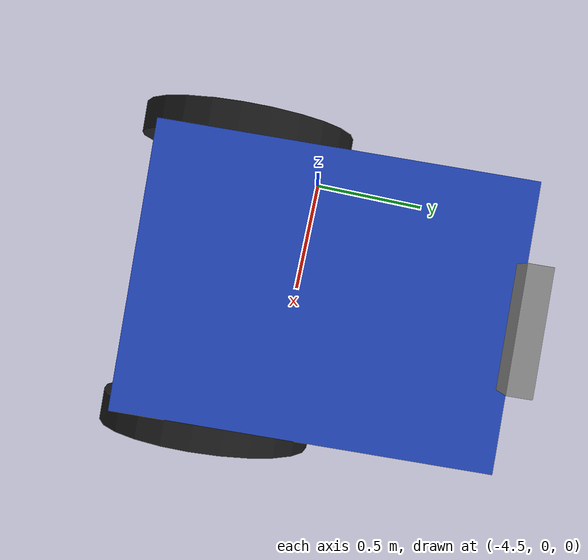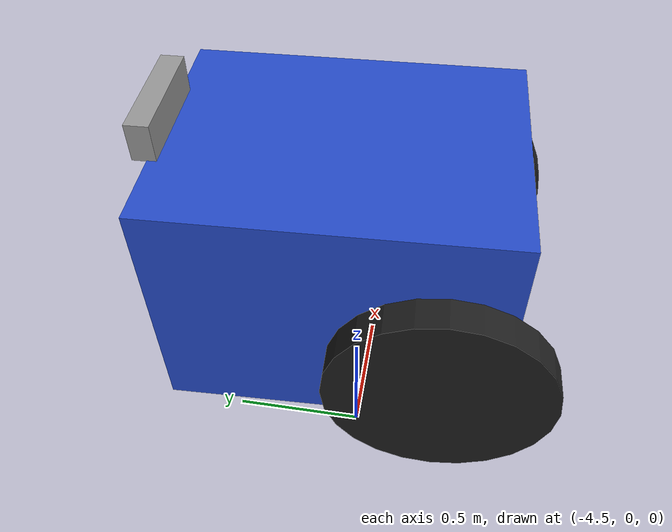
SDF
<sdf version="1.6">
 <world name="default">
  <scene>
   <grid>0</grid>
   <ambient>0.4 0.4 0.4 1</ambient>
   <background>0.7 0.7 0.7 1</background>
   <shadows>1</shadows>
  </scene>
  <light name="sun" type="directional">
   <pose>0 0 10 0 -0 0</pose>
   <diffuse>0.8 0.8 0.8 1</diffuse>
   <specular>0.1 0.1 0.1 1</specular>
   <attenuation>
    <range>1000</range>
    <constant>0.9</constant>
    <linear>0.01</linear>
    <quadratic>0.001</quadratic>
   </attenuation>
   <direction>-0.5 0.5 -1</direction>
  </light>
  <model name="ground">
   <link name="body">
    <collision name="geom">
     <geometry><plane><normal>0 0 1</normal><size>1 1</size></plane></geometry>
     <surface><friction><ode><mu>100</mu><mu2>50</mu2></ode></friction></surface>
    </collision>
   </link>
   <static>1</static>
  </model>
  <gravity>0 0 -9.8</gravity>
  <magnetic_field>6e-06 2.3e-05 -4.2e-05</magnetic_field>
  <atmosphere type="adiabatic"/>
  <physics name="default_physics" default="0" type="ode">
   <max_step_size>0.001</max_step_size>
   <real_time_factor>1</real_time_factor>
   <real_time_update_rate>1000</real_time_update_rate>
  </physics>
  <spherical_coordinates>
   <surface_model>EARTH_WGS84</surface_model>
   <latitude_deg>0</latitude_deg>
   <longitude_deg>0</longitude_deg>
   <elevation>0</elevation>
   <heading_deg>0</heading_deg>
  </spherical_coordinates>
  <model name="vehicle_model">
   <link name="link_1">
    <pose>0 0.11625 0.1275 0 -0 0</pose>
    <inertial>
     <mass>0.05</mass>
     <inertia><ixx>1</ixx><ixy>0</ixy><ixz>0</ixz><iyy>1</iyy><iyz>0</iyz><izz>1</izz></inertia>
    </inertial>
    <visual name="visual">
     <geometry><box><size>1.03 1.35 1</size></box></geometry>
     <material>
      <lighting>1</lighting>
      <script><uri>file://media/materials/scripts/gazebo.material</uri><name>Gazebo/Blue</name></script>
      <ambient>0.3 0.3 0.3 1</ambient>
      <diffuse>0.7 0.7 0.7 1</diffuse>
      <specular>0.01 0.01 0.01 1</specular>
      <emissive>0 0 0 1</emissive>
      <shader type="vertex"><normal_map>__default__</normal_map></shader>
     </material>
    </visual>
    <visual name="ModelPreview_0::link_1::visual_1">
     <geometry><box><size>1.03 1.35 1</size></box></geometry>
     <material>
      <lighting>1</lighting>
      <script><uri>file://media/materials/scripts/gazebo.material</uri><name>Gazebo/Grey</name></script>
      <ambient>0.3 0.3 0.3 1</ambient>
      <diffuse>0.7 0.7 0.7 1</diffuse>
      <specular>0.01 0.01 0.01 1</specular>
      <emissive>0 0 0 1</emissive>
      <shader type="vertex"><normal_map>__default__</normal_map></shader>
     </material>
    </visual>
    <collision name="collision">
     <geometry><box><size>1.03 1.35 1</size></box></geometry>
     <surface>
      <friction>
       <ode><mu>1</mu><mu2>1</mu2><fdir1>0 0 0</fdir1><slip1>0</slip1><slip2>0</slip2></ode>
       <torsional>
        <coefficient>1</coefficient>
        <patch_radius>0</patch_radius>
        <surface_radius>0</surface_radius>
        <use_patch_radius>1</use_patch_radius>
        <ode><slip>0</slip></ode>
       </torsional>
      </friction>
      <bounce><restitution_coefficient>0</restitution_coefficient><threshold>1e+06</threshold></bounce>
      <contact>
       <collide_without_contact>0</collide_without_contact>
       <collide_without_contact_bitmask>1</collide_without_contact_bitmask>
       <collide_bitmask>1</collide_bitmask>
       <ode>
        <soft_cfm>0</soft_cfm>
        <soft_erp>0.2</soft_erp>
        <kp>1e+13</kp>
        <kd>1</kd>
        <max_vel>0.01</max_vel>
        <min_depth>0</min_depth>
       </ode>
       <bullet>
        <split_impulse>1</split_impulse>
        <split_impulse_penetration_threshold>-0.01</split_impulse_penetration_threshold>
        <soft_cfm>0</soft_cfm>
        <soft_erp>0.2</soft_erp>
        <kp>1e+13</kp>
        <kd>1</kd>
       </bullet>
      </contact>
     </surface>
    </collision>
   </link>
   <link name="link_0">
    <pose>0.6 -0.28375 -0.0425 0 -0 0</pose>
    <inertial>
     <mass>5</mass>
     <pose>0 0 0 0 1.57079 0</pose>
     <inertia><ixx>1</ixx><ixy>0</ixy><ixz>0</ixz><iyy>1</iyy><iyz>0</iyz><izz>1</izz></inertia>
    </inertial>
    <visual name="visual">
     <pose>0 0 0 0 1.57079 0</pose>
     <geometry><cylinder><radius>0.44</radius><length>0.127562</length></cylinder></geometry>
     <material>
      <lighting>1</lighting>
      <script><uri>file://media/materials/scripts/gazebo.material</uri><name>Gazebo/Black</name></script>
      <ambient>0.3 0.3 0.3 1</ambient>
      <diffuse>0.7 0.7 0.7 1</diffuse>
      <specular>0.01 0.01 0.01 1</specular>
      <emissive>0 0 0 1</emissive>
      <shader type="vertex"><normal_map>__default__</normal_map></shader>
     </material>
    </visual>
    <collision name="collision">
     <pose>0 0 0 0 1.57079 0</pose>
     <geometry><cylinder><radius>0.44</radius><length>0.127562</length></cylinder></geometry>
     <surface>
      <friction>
       <ode><mu>1</mu><mu2>1</mu2><fdir1>0 0 0</fdir1><slip1>0</slip1><slip2>0</slip2></ode>
       <torsional>
        <coefficient>1</coefficient>
        <patch_radius>0</patch_radius>
        <surface_radius>0</surface_radius>
        <use_patch_radius>1</use_patch_radius>
        <ode><slip>0</slip></ode>
       </torsional>
      </friction>
      <bounce><restitution_coefficient>0</restitution_coefficient><threshold>1e+06</threshold></bounce>
      <contact>
       <collide_without_contact>0</collide_without_contact>
       <collide_without_contact_bitmask>1</collide_without_contact_bitmask>
       <collide_bitmask>1</collide_bitmask>
       <ode>
        <soft_cfm>0</soft_cfm>
        <soft_erp>0.2</soft_erp>
        <kp>1e+13</kp>
        <kd>1</kd>
        <max_vel>0.01</max_vel>
        <min_depth>0</min_depth>
       </ode>
       <bullet>
        <split_impulse>1</split_impulse>
        <split_impulse_penetration_threshold>-0.01</split_impulse_penetration_threshold>
        <soft_cfm>0</soft_cfm>
        <soft_erp>0.2</soft_erp>
        <kp>1e+13</kp>
        <kd>1</kd>
       </bullet>
      </contact>
     </surface>
    </collision>
   </link>
   <link name="link_0_clone">
    <pose>-0.6 -0.30375 -0.0425 0 -0 0</pose>
    <inertial>
     <mass>5</mass>
     <pose>0 0 0 0 1.57079 0</pose>
     <inertia><ixx>1</ixx><ixy>0</ixy><ixz>0</ixz><iyy>1</iyy><iyz>0</iyz><izz>1</izz></inertia>
    </inertial>
    <visual name="visual">
     <pose>0 0 0 0 1.57079 0</pose>
     <geometry><cylinder><radius>0.44</radius><length>0.127562</length></cylinder></geometry>
     <material>
      <lighting>1</lighting>
      <script><uri>file://media/materials/scripts/gazebo.material</uri><name>Gazebo/Black</name></script>
      <ambient>0.3 0.3 0.3 1</ambient>
      <diffuse>0.7 0.7 0.7 1</diffuse>
      <specular>0.01 0.01 0.01 1</specular>
      <emissive>0 0 0 1</emissive>
      <shader type="vertex"><normal_map>__default__</normal_map></shader>
     </material>
    </visual>
    <collision name="collision">
     <pose>0 0 0 0 1.57079 0</pose>
     <geometry><cylinder><radius>0.44</radius><length>0.127562</length></cylinder></geometry>
     <surface>
      <friction>
       <ode><mu>1</mu><mu2>1</mu2><fdir1>0 0 0</fdir1><slip1>0</slip1><slip2>0</slip2></ode>
       <torsional>
        <coefficient>1</coefficient>
        <patch_radius>0</patch_radius>
        <surface_radius>0</surface_radius>
        <use_patch_radius>1</use_patch_radius>
        <ode><slip>0</slip></ode>
       </torsional>
      </friction>
      <bounce><restitution_coefficient>0</restitution_coefficient><threshold>1e+06</threshold></bounce>
      <contact>
       <collide_without_contact>0</collide_without_contact>
       <collide_without_contact_bitmask>1</collide_without_contact_bitmask>
       <collide_bitmask>1</collide_bitmask>
       <ode>
        <soft_cfm>0</soft_cfm>
        <soft_erp>0.2</soft_erp>
        <kp>1e+13</kp>
        <kd>1</kd>
        <max_vel>0.01</max_vel>
        <min_depth>0</min_depth>
       </ode>
       <bullet>
        <split_impulse>1</split_impulse>
        <split_impulse_penetration_threshold>-0.01</split_impulse_penetration_threshold>
        <soft_cfm>0</soft_cfm>
        <soft_erp>0.2</soft_erp>
        <kp>1e+13</kp>
        <kd>1</kd>
       </bullet>
      </contact>
     </surface>
    </collision>
   </link>
   <link name="link_2">
    <pose>-0 0.47125 -0.0425 0 -0 0</pose>
    <inertial>
     <mass>5</mass>
     <inertia><ixx>1</ixx><ixy>0</ixy><ixz>0</ixz><iyy>1</iyy><iyz>0</iyz><izz>1</izz></inertia>
    </inertial>
    <visual name="visual">
     <geometry><sphere><radius>0.44</radius></sphere></geometry>
     <material>
      <lighting>1</lighting>
      <script><uri>file://media/materials/scripts/gazebo.material</uri><name>Gazebo/Blue</name></script>
      <ambient>0.3 0.3 0.3 1</ambient>
      <diffuse>0.7 0.7 0.7 1</diffuse>
      <specular>0.01 0.01 0.01 1</specular>
      <emissive>0 0 0 1</emissive>
      <shader type="vertex"><normal_map>__default__</normal_map></shader>
     </material>
    </visual>
    <collision name="collision">
     <geometry><sphere><radius>0.44</radius></sphere></geometry>
     <surface>
      <friction>
       <ode><mu>0.05</mu><mu2>0.05</mu2><fdir1>0 0 0</fdir1><slip1>1</slip1><slip2>1</slip2></ode>
       <torsional>
        <coefficient>1</coefficient>
        <patch_radius>0</patch_radius>
        <surface_radius>0</surface_radius>
        <use_patch_radius>1</use_patch_radius>
        <ode><slip>0</slip></ode>
       </torsional>
      </friction>
      <bounce><restitution_coefficient>0</restitution_coefficient><threshold>1e+06</threshold></bounce>
      <contact>
       <collide_without_contact>0</collide_without_contact>
       <collide_without_contact_bitmask>1</collide_without_contact_bitmask>
       <collide_bitmask>1</collide_bitmask>
       <ode>
        <soft_cfm>0</soft_cfm>
        <soft_erp>0.2</soft_erp>
        <kp>1e+13</kp>
        <kd>1</kd>
        <max_vel>0.01</max_vel>
        <min_depth>0</min_depth>
       </ode>
       <bullet>
        <split_impulse>1</split_impulse>
        <split_impulse_penetration_threshold>-0.01</split_impulse_penetration_threshold>
        <soft_cfm>0</soft_cfm>
        <soft_erp>0.2</soft_erp>
        <kp>1e+13</kp>
        <kd>1</kd>
       </bullet>
      </contact>
     </surface>
    </collision>
   </link>
   <model name="vehicle_camera">
    <pose>0 0.8 0.7 0 -0 1.5708</pose>
    <link name="link_0">
     <inertial>
      <mass>0.00603968</mass>
      <inertia>
       <ixx>1.55691e-05</ixx>
       <ixy>0</ixy>
       <ixz>0</ixz>
       <iyy>0.000110152</iyy>
       <iyz>0</iyz>
       <izz>0.00010281</izz>
      </inertia>
     </inertial>
     <visual name="visual">
      <geometry><box><size>0.090403 0.442828 0.150878</size></box></geometry>
      <material>
       <lighting>1</lighting>
       <script><uri>file://media/materials/scripts/gazebo.material</uri><name>Gazebo/Grey</name></script>
       <ambient>0.3 0.3 0.3 1</ambient>
       <diffuse>0.7 0.7 0.7 1</diffuse>
       <specular>0.01 0.01 0.01 1</specular>
       <emissive>0 0 0 1</emissive>
      </material>
     </visual>
     <collision name="collision">
      <geometry><box><size>0.090403 0.442828 0.150878</size></box></geometry>
      <surface>
       <friction>
        <ode><mu>1</mu><mu2>1</mu2><fdir1>0 0 0</fdir1><slip1>0</slip1><slip2>0</slip2></ode>
        <torsional>
         <coefficient>1</coefficient>
         <patch_radius>0</patch_radius>
         <surface_radius>0</surface_radius>
         <use_patch_radius>1</use_patch_radius>
         <ode><slip>0</slip></ode>
        </torsional>
       </friction>
       <bounce><restitution_coefficient>0</restitution_coefficient><threshold>1e+06</threshold></bounce>
       <contact>
        <collide_without_contact>0</collide_without_contact>
        <collide_without_contact_bitmask>1</collide_without_contact_bitmask>
        <collide_bitmask>1</collide_bitmask>
        <ode>
         <soft_cfm>0</soft_cfm>
         <soft_erp>0.2</soft_erp>
         <kp>1e+13</kp>
         <kd>1</kd>
         <max_vel>0.01</max_vel>
         <min_depth>0</min_depth>
        </ode>
        <bullet>
         <split_impulse>1</split_impulse>
         <split_impulse_penetration_threshold>-0.01</split_impulse_penetration_threshold>
         <soft_cfm>0</soft_cfm>
         <soft_erp>0.2</soft_erp>
         <kp>1e+13</kp>
         <kd>1</kd>
        </bullet>
       </contact>
      </surface>
     </collision>
     <sensor name="vehicle_sensor" type="camera">
      <update_rate>5</update_rate>
      <camera name="vehicle_cam">
       <horizontal_fov>1.39626</horizontal_fov>
       <image><width>200</width><height>200</height><format>R8G8B8</format></image>
       <clip><near>0.02</near><far>300</far></clip>
      </camera>
      <plugin name="camera_controller" filename="libgazebo_ros_camera.so">
       <alwaysOn>true</alwaysOn>
       <updateRate>0.0</updateRate>
       <cameraName>vehicle_cam</cameraName>
       <imageTopicName>image_raw</imageTopicName>
       <cameraInfoTopicName>camera_info</cameraInfoTopicName>
       <frameName>link_0</frameName>
       <hackBaseline>0.07</hackBaseline>
      </plugin>
     </sensor>
    </link>
    <static>0</static>
    <pose>0.185754 2.06711 5e-06 0 -0 0</pose>
   </model>
   <joint name="link_1_JOINT_0_0" type="fixed">
    <parent>link_1</parent>
    <child>vehicle_camera::link_0</child>
    <physics>
     <ode><limit><cfm>0</cfm><erp>0.2</erp></limit><suspension><cfm>0</cfm><erp>0.2</erp></suspension></ode>
    </physics>
   </joint>
   <joint name="link_1_JOINT_0" type="revolute">
    <parent>link_1</parent>
    <child>link_0_clone</child>
    <axis>
     <xyz>-1 0 0</xyz>
     <use_parent_model_frame>0</use_parent_model_frame>
     <limit>
      <lower>-1.79769e+308</lower>
      <upper>1.79769e+308</upper>
      <effort>-1</effort>
      <velocity>-1</velocity>
     </limit>
     <dynamics>
      <spring_reference>0</spring_reference>
      <spring_stiffness>0</spring_stiffness>
      <damping>0</damping>
      <friction>0</friction>
     </dynamics>
    </axis>
    <physics>
     <ode><limit><cfm>0</cfm><erp>0.2</erp></limit><suspension><cfm>0</cfm><erp>0.2</erp></suspension></ode>
    </physics>
   </joint>
   <joint name="link_1_JOINT_1" type="revolute">
    <parent>link_1</parent>
    <child>link_0</child>
    <pose>-0.11 0 0 0 -0 0</pose>
    <axis>
     <xyz>1 0 0</xyz>
     <use_parent_model_frame>0</use_parent_model_frame>
     <limit>
      <lower>-1.79769e+308</lower>
      <upper>1.79769e+308</upper>
      <effort>-1</effort>
      <velocity>-1</velocity>
     </limit>
     <dynamics>
      <spring_reference>0</spring_reference>
      <spring_stiffness>0</spring_stiffness>
      <damping>0</damping>
      <friction>0</friction>
     </dynamics>
    </axis>
    <physics>
     <ode><limit><cfm>0</cfm><erp>0.2</erp></limit><suspension><cfm>0</cfm><erp>0.2</erp></suspension></ode>
    </physics>
   </joint>
   <joint name="link_2_JOINT_2" type="ball">
    <parent>link_1</parent>
    <child>link_2</child>
    <physics>
     <ode><limit><cfm>0</cfm><erp>0.2</erp></limit><suspension><cfm>0</cfm><erp>0.2</erp></suspension></ode>
    </physics>
   </joint>
   <static>0</static>
   <plugin name="differential_drive_controller" filename="libgazebo_ros_diff_drive.so">
    <alwaysOn>true</alwaysOn>
    <updateRate>5</updateRate>
    <leftJoint>link_1_JOINT_0</leftJoint>
    <rightJoint>link_1_JOINT_1</rightJoint>
    <wheelSeparation>1.04</wheelSeparation>
    <wheelDiameter>0.44</wheelDiameter>
    <torque>10</torque>
    <commandTopic>cmd_vel</commandTopic>
    <odometryTopic>odom</odometryTopic>
    <odometryFrame>odom</odometryFrame>
    <robotBaseFrame>base_footprint</robotBaseFrame>
   </plugin>
   <pose>-4.00848 0.005041 0.482497 -1e-06 3e-06 0.040244</pose>
  </model>
 </world>
</sdf>
